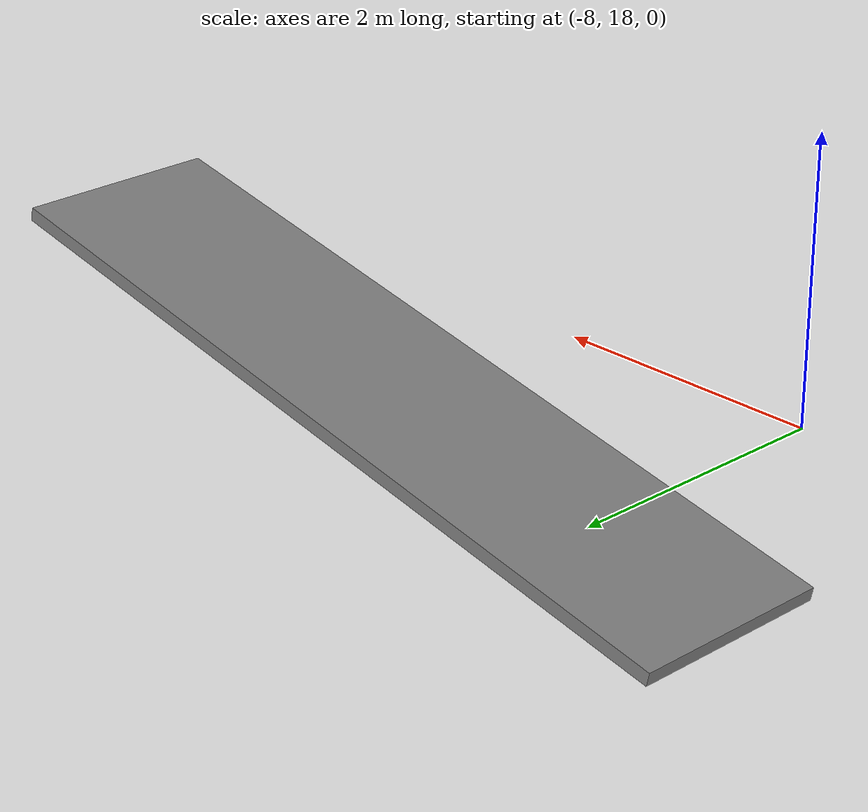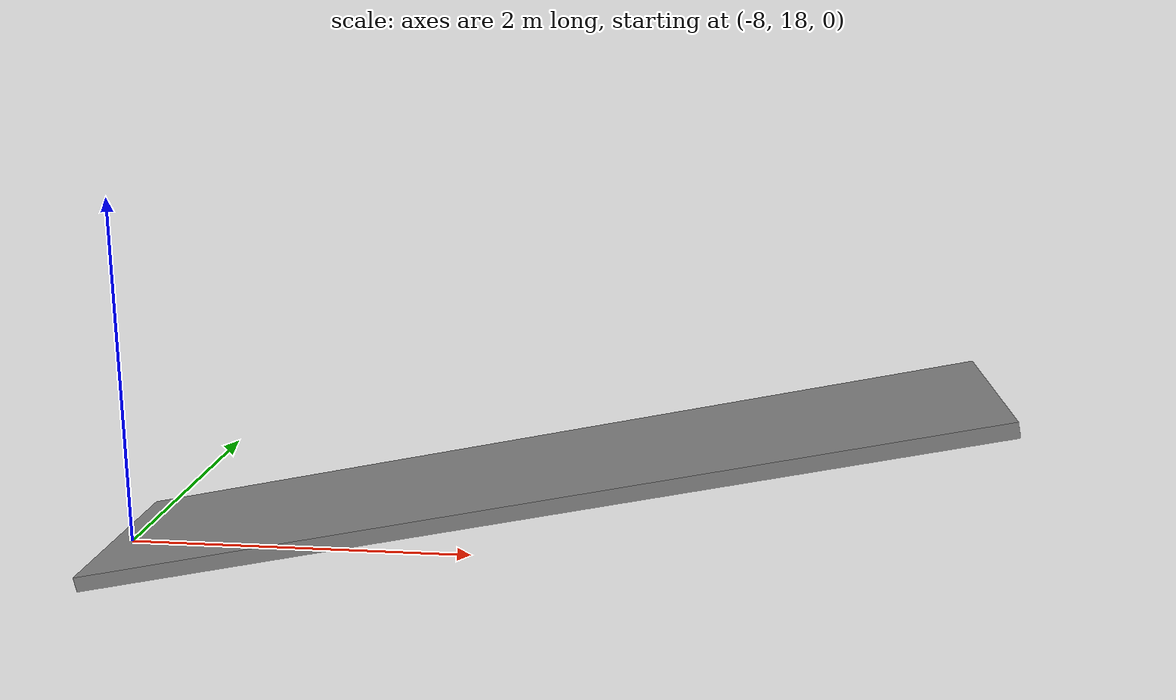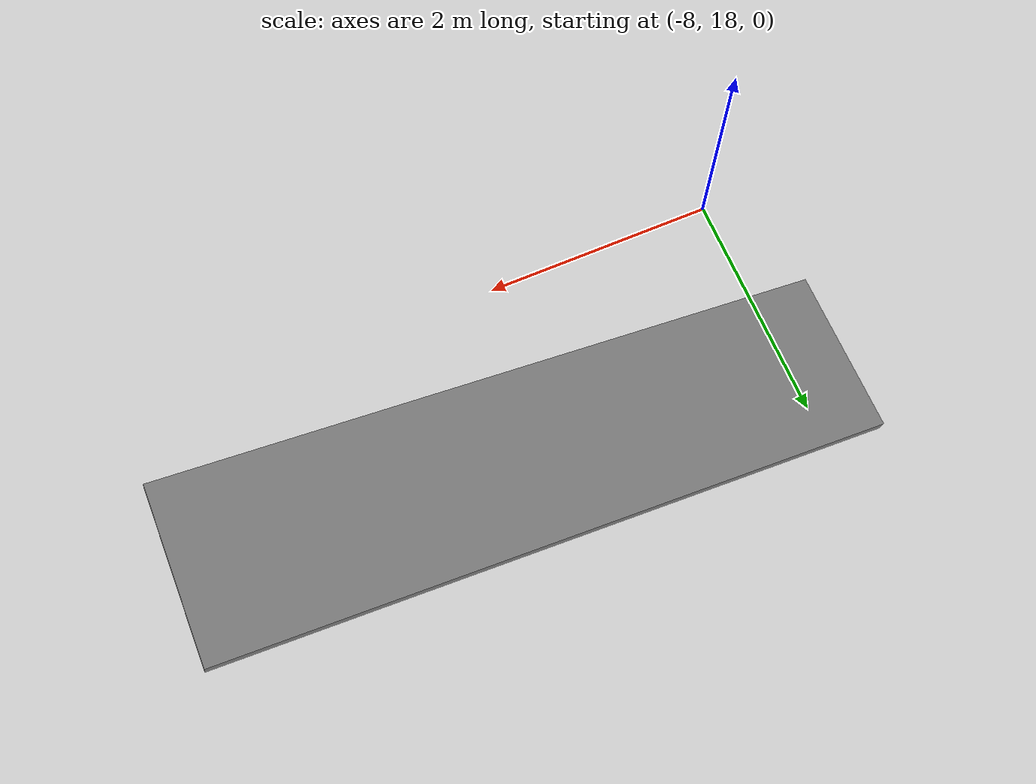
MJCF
<mujoco model="go2 scene">

  <statistic center="0 0 0.1" extent="0.8" />

  <visual>
    <headlight diffuse="0.6 0.6 0.6" ambient="0.3 0.3 0.3" specular="0 0 0" />
    <rgba haze="0.15 0.25 0.35 1" />
    <global azimuth="-130" elevation="-20" />
  </visual>

  <asset>
    <texture type="skybox" builtin="gradient" rgb1="0.3 0.5 0.7" rgb2="0 0 0" width="512" height="3072" />
  </asset>

  <worldbody>
  <geom pos="-5.8 19.5 0" type="box" size="3 0.75 0.05" quat="0.9945239601465095 0.0 -0.1045088163482106 0.0" /></worldbody>
</mujoco>
